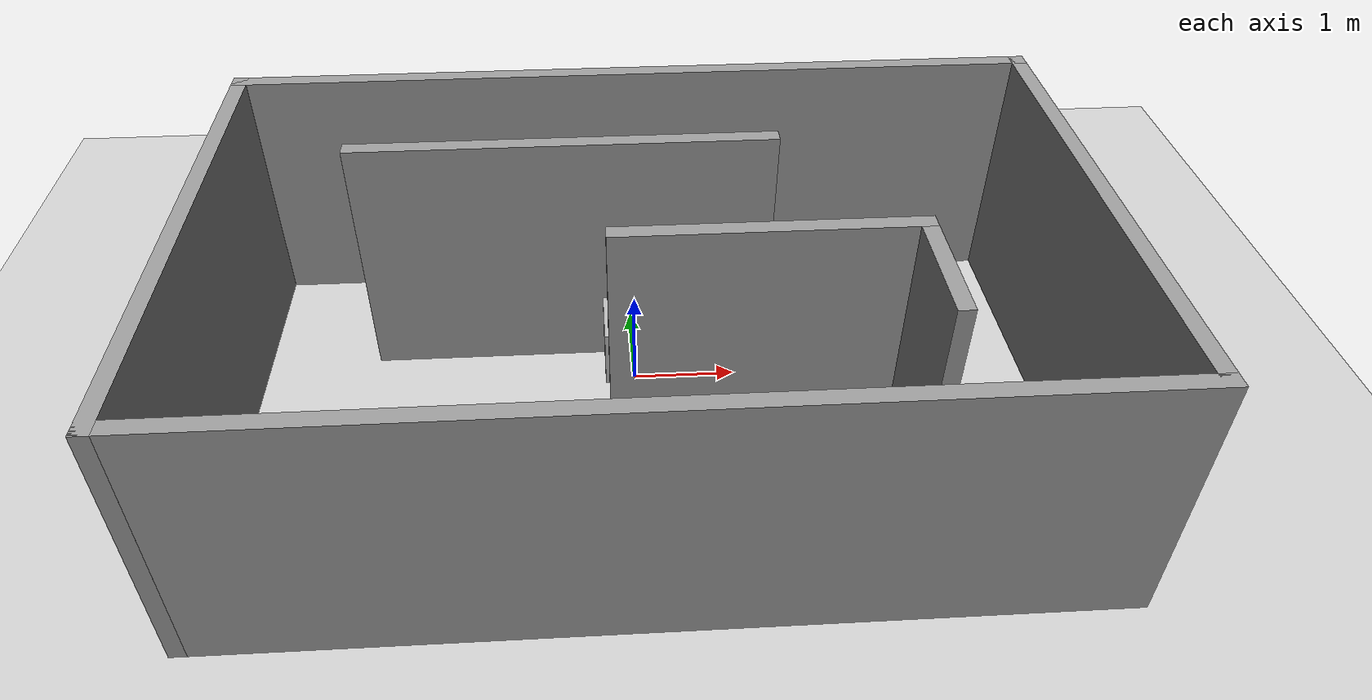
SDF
<sdf version="1.6">
 <world name="default">
  <light name="sun" type="directional">
   <pose>0 0 10 0 -0 0</pose>
   <diffuse>0.8 0.8 0.8 1</diffuse>
   <specular>0.2 0.2 0.2 1</specular>
   <attenuation>
    <range>1000</range>
    <constant>0.9</constant>
    <linear>0.01</linear>
    <quadratic>0.001</quadratic>
   </attenuation>
   <direction>-0.5 0.1 -0.9</direction>
  </light>
  <model name="ground_plane">
   <static>1</static>
   <link name="link">
    <collision name="collision">
     <geometry><plane><normal>0 0 1</normal><size>100 100</size></plane></geometry>
     <surface><friction><ode><mu>100</mu><mu2>50</mu2></ode></friction></surface>
    </collision>
    <visual name="visual">
     <cast_shadows>0</cast_shadows>
     <geometry><plane><normal>0 0 1</normal><size>100 100</size></plane></geometry>
     <material>
      <script><uri>file://media/materials/scripts/gazebo.material</uri><name>Gazebo/Grey</name></script>
     </material>
    </visual>
   </link>
  </model>
  <gravity>0 0 -9.8</gravity>
  <magnetic_field>6e-06 2.3e-05 -4.2e-05</magnetic_field>
  <atmosphere type="adiabatic"/>
  <physics type="ode">
   <real_time_update_rate>1000.0</real_time_update_rate>
   <max_step_size>0.001</max_step_size>
   <real_time_factor>1</real_time_factor>
   <ode>
    <solver>
     <type>quick</type>
     <iters>150</iters>
     <precon_iters>0</precon_iters>
     <sor>1.400000</sor>
     <use_dynamic_moi_rescaling>1</use_dynamic_moi_rescaling>
    </solver>
    <constraints>
     <cfm>0.00001</cfm>
     <erp>0.2</erp>
     <contact_max_correcting_vel>2000.000000</contact_max_correcting_vel>
     <contact_surface_layer>0.01000</contact_surface_layer>
    </constraints>
   </ode>
  </physics>
  <scene><ambient>0.4 0.4 0.4 1</ambient><background>0.7 0.7 0.7 1</background><shadows>1</shadows></scene>
  <spherical_coordinates>
   <surface_model>EARTH_WGS84</surface_model>
   <latitude_deg>0</latitude_deg>
   <longitude_deg>0</longitude_deg>
   <elevation>0</elevation>
   <heading_deg>0</heading_deg>
  </spherical_coordinates>
  <model name="custom_space">
   <pose>0.108656 -0.596624 0 0 -0 0</pose>
   <link name="Wall_11">
    <collision name="Wall_11_Collision">
     <geometry><box><size>2.75 0.15 2.5</size></box></geometry>
     <pose>0 0 1.25 0 -0 0</pose>
    </collision>
    <visual name="Wall_11_Visual">
     <pose>0 0 1.25 0 -0 0</pose>
     <geometry><box><size>2.75 0.15 2.5</size></box></geometry>
     <material>
      <script><uri>file://media/materials/scripts/gazebo.material</uri><name>Gazebo/Grey</name></script>
      <ambient>1 1 1 1</ambient>
     </material>
     <meta><layer>0</layer></meta>
    </visual>
    <pose>0.9947 -0.38195 0 0 -0 0</pose>
   </link>
   <link name="Wall_12">
    <collision name="Wall_12_Collision">
     <geometry><box><size>1.25 0.15 2.5</size></box></geometry>
     <pose>0 0 1.25 0 -0 0</pose>
    </collision>
    <visual name="Wall_12_Visual">
     <pose>0 0 1.25 0 -0 0</pose>
     <geometry><box><size>1.25 0.15 2.5</size></box></geometry>
     <material>
      <script><uri>file://media/materials/scripts/gazebo.material</uri><name>Gazebo/Grey</name></script>
      <ambient>1 1 1 1</ambient>
     </material>
     <meta><layer>0</layer></meta>
    </visual>
    <pose>2.2947 -0.93195 0 0 0 -1.5708</pose>
   </link>
   <link name="Wall_4">
    <collision name="Wall_4_Collision">
     <geometry><box><size>5 0.15 2.5</size></box></geometry>
     <pose>0 0 1.25 0 -0 0</pose>
    </collision>
    <visual name="Wall_4_Visual">
     <pose>0 0 1.25 0 -0 0</pose>
     <geometry><box><size>5 0.15 2.5</size></box></geometry>
     <material>
      <script><uri>file://media/materials/scripts/gazebo.material</uri><name>Gazebo/Grey</name></script>
      <ambient>1 1 1 1</ambient>
     </material>
     <meta><layer>0</layer></meta>
    </visual>
    <pose>-3.925 0 0 0 -0 1.5708</pose>
   </link>
   <link name="Wall_5">
    <collision name="Wall_5_Collision">
     <geometry><box><size>8 0.15 2.5</size></box></geometry>
     <pose>0 0 1.25 0 -0 0</pose>
    </collision>
    <visual name="Wall_5_Visual">
     <pose>0 0 1.25 0 -0 0</pose>
     <geometry><box><size>8 0.15 2.5</size></box></geometry>
     <material>
      <script><uri>file://media/materials/scripts/gazebo.material</uri><name>Gazebo/Grey</name></script>
      <ambient>1 1 1 1</ambient>
     </material>
     <meta><layer>0</layer></meta>
    </visual>
    <pose>0 2.425 0 0 -0 0</pose>
   </link>
   <link name="Wall_6">
    <collision name="Wall_6_Collision">
     <geometry><box><size>5 0.15 2.5</size></box></geometry>
     <pose>0 0 1.25 0 -0 0</pose>
    </collision>
    <visual name="Wall_6_Visual">
     <pose>0 0 1.25 0 -0 0</pose>
     <geometry><box><size>5 0.15 2.5</size></box></geometry>
     <material>
      <script><uri>file://media/materials/scripts/gazebo.material</uri><name>Gazebo/Grey</name></script>
      <ambient>1 1 1 1</ambient>
     </material>
     <meta><layer>0</layer></meta>
    </visual>
    <pose>3.925 0 0 0 0 -1.5708</pose>
   </link>
   <link name="Wall_7">
    <collision name="Wall_7_Collision">
     <geometry><box><size>8 0.15 2.5</size></box></geometry>
     <pose>0 0 1.25 0 -0 0</pose>
    </collision>
    <visual name="Wall_7_Visual">
     <pose>0 0 1.25 0 -0 0</pose>
     <geometry><box><size>8 0.15 2.5</size></box></geometry>
     <material>
      <script><uri>file://media/materials/scripts/gazebo.material</uri><name>Gazebo/Grey</name></script>
      <ambient>1 1 1 1</ambient>
     </material>
     <meta><layer>0</layer></meta>
    </visual>
    <pose>0 -2.425 0 0 -0 3.14159</pose>
   </link>
   <link name="Wall_9">
    <collision name="Wall_9_Collision">
     <geometry><box><size>4 0.15 2.5</size></box></geometry>
     <pose>0 0 1.25 0 -0 0</pose>
    </collision>
    <visual name="Wall_9_Visual">
     <pose>0 0 1.25 0 -0 0</pose>
     <geometry><box><size>4 0.15 2.5</size></box></geometry>
     <material>
      <script><uri>file://media/materials/scripts/gazebo.material</uri><name>Gazebo/Grey</name></script>
      <ambient>1 1 1 1</ambient>
     </material>
     <meta><layer>0</layer></meta>
    </visual>
    <pose>-0.73435 1.0728 0 0 -0 0</pose>
   </link>
   <static>1</static>
  </model>
  <model name="box">
   <pose>0 0 0.5 0 0 0</pose>
   <link name="link">
    <collision name="collision"><geometry><box><size>1 1 1</size></box></geometry></collision>
    <visual name="visual"><geometry><box><size>0.6 0.6 0.6</size></box></geometry></visual>
   </link>
   <plugin name="push_animate" filename="/home/alex/gazebo_animationbox_tutorial/build/libanimated_box.so"/>
  </model>
 </world>
</sdf>
